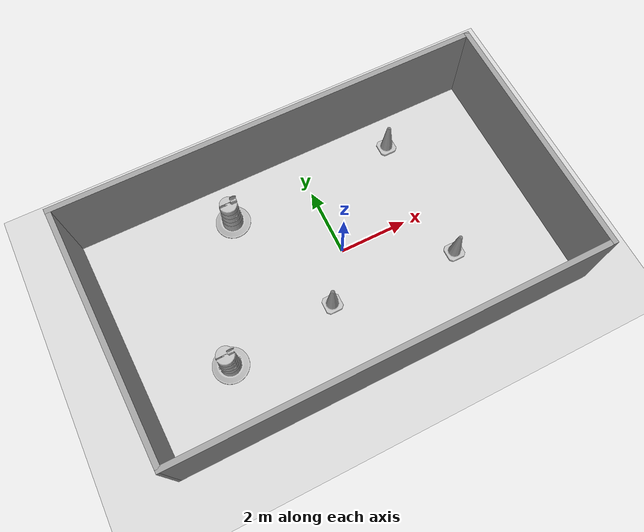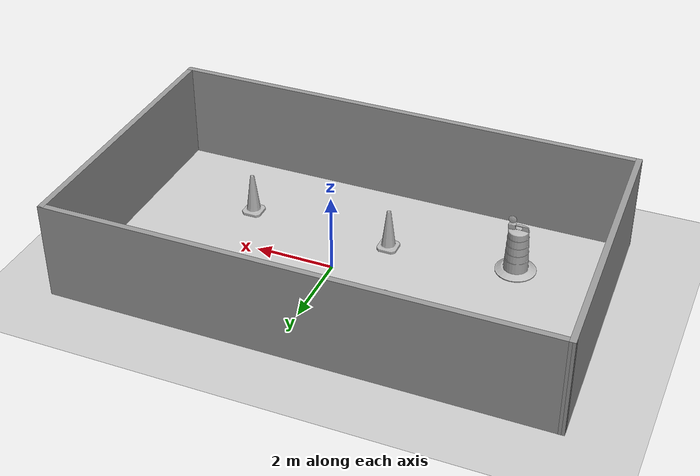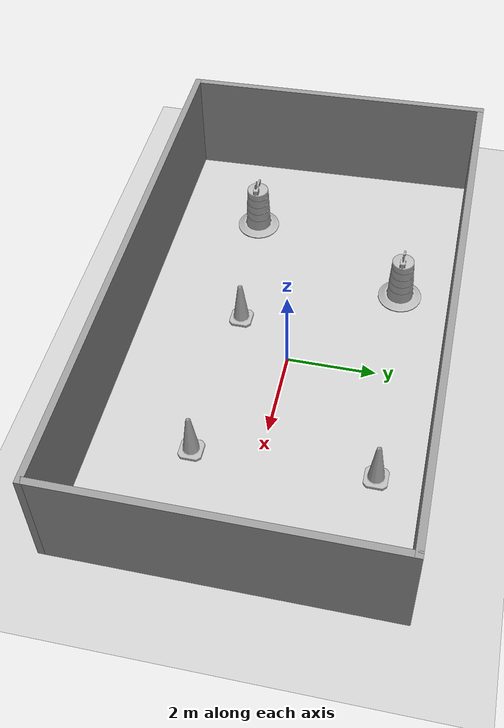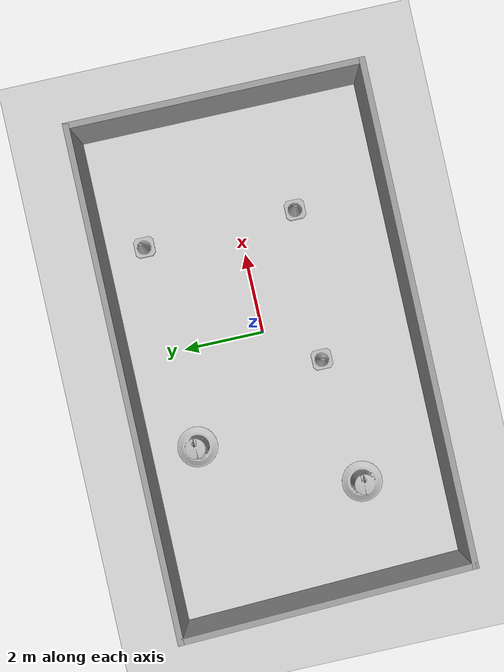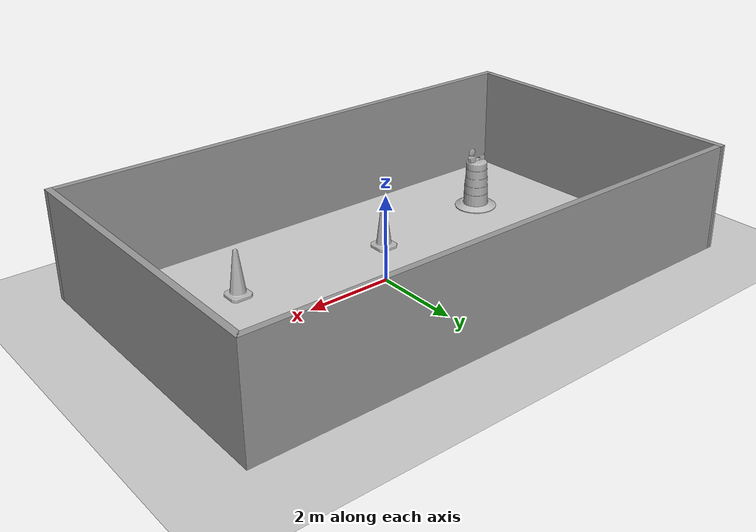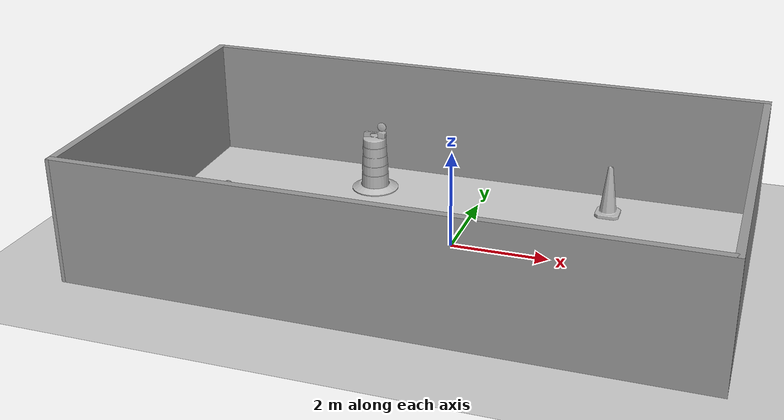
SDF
<sdf version="1.7">
 <world name="default">
  <light name="sun" type="directional">
   <pose>0 0 10 0 -0 0</pose>
   <diffuse>0.8 0.8 0.8 1</diffuse>
   <specular>0.2 0.2 0.2 1</specular>
   <attenuation>
    <range>1000</range>
    <constant>0.9</constant>
    <linear>0.01</linear>
    <quadratic>0.001</quadratic>
   </attenuation>
   <direction>-0.5 0.1 -0.9</direction>
   <spot><inner_angle>0</inner_angle><outer_angle>0</outer_angle><falloff>0</falloff></spot>
  </light>
  <model name="ground_plane">
   <static>1</static>
   <link name="link">
    <collision name="collision">
     <geometry><plane><normal>0 0 1</normal><size>100 100</size></plane></geometry>
     <surface><friction><ode><mu>100</mu><mu2>50</mu2></ode></friction></surface>
    </collision>
    <visual name="visual">
     <cast_shadows>0</cast_shadows>
     <geometry><plane><normal>0 0 1</normal><size>100 100</size></plane></geometry>
     <material>
      <script><uri>file://media/materials/scripts/gazebo.material</uri><name>Gazebo/Grey</name></script>
     </material>
    </visual>
   </link>
  </model>
  <gravity>0 0 -9.8</gravity>
  <magnetic_field>6e-06 2.3e-05 -4.2e-05</magnetic_field>
  <atmosphere type="adiabatic"/>
  <physics type="ode">
   <max_step_size>0.001</max_step_size>
   <real_time_factor>1</real_time_factor>
   <real_time_update_rate>1000</real_time_update_rate>
  </physics>
  <scene><ambient>0.4 0.4 0.4 1</ambient><background>0.7 0.7 0.7 1</background><shadows>1</shadows></scene>
  <audio><device>default</device></audio>
  <spherical_coordinates>
   <surface_model>EARTH_WGS84</surface_model>
   <latitude_deg>0</latitude_deg>
   <longitude_deg>0</longitude_deg>
   <elevation>0</elevation>
   <heading_deg>0</heading_deg>
  </spherical_coordinates>
  <model name="Untitled">
   <pose>-0.516296 -0.11 0 0 -0 0</pose>
   <link name="Wall_1">
    <collision name="Wall_1_Collision">
     <geometry><box><size>12.5 0.15 2.5</size></box></geometry>
     <pose>0 0 1.25 0 -0 0</pose>
    </collision>
    <visual name="Wall_1_Visual">
     <pose>0 0 1.25 0 -0 0</pose>
     <geometry><box><size>12.5 0.15 2.5</size></box></geometry>
     <material>
      <script><uri>file://media/materials/scripts/gazebo.material</uri><name>Gazebo/Grey</name></script>
      <ambient>1 1 1 1</ambient>
     </material>
     <meta><layer>0</layer></meta>
    </visual>
    <pose>0.001296 3.55 0 0 -0 0</pose>
   </link>
   <link name="Wall_2">
    <collision name="Wall_2_Collision">
     <geometry><box><size>7.25 0.15 2.5</size></box></geometry>
     <pose>0 0 1.25 0 -0 0</pose>
    </collision>
    <visual name="Wall_2_Visual">
     <pose>0 0 1.25 0 -0 0</pose>
     <geometry><box><size>7.25 0.15 2.5</size></box></geometry>
     <material>
      <script><uri>file://media/materials/scripts/gazebo.material</uri><name>Gazebo/Grey</name></script>
      <ambient>1 1 1 1</ambient>
     </material>
     <meta><layer>0</layer></meta>
    </visual>
    <pose>6.1763 -0 0 0 -0 -1.5708</pose>
   </link>
   <link name="Wall_3">
    <collision name="Wall_3_Collision">
     <geometry><box><size>12.25 0.15 2.5</size></box></geometry>
     <pose>0 0 1.25 0 -0 0</pose>
    </collision>
    <visual name="Wall_3_Visual">
     <pose>0 0 1.25 0 -0 0</pose>
     <geometry><box><size>12.25 0.15 2.5</size></box></geometry>
     <material>
      <script><uri>file://media/materials/scripts/gazebo.material</uri><name>Gazebo/Grey</name></script>
      <ambient>1 1 1 1</ambient>
     </material>
     <meta><layer>0</layer></meta>
    </visual>
    <pose>0.126296 -3.55 0 0 -0 3.14159</pose>
   </link>
   <link name="Wall_4">
    <collision name="Wall_4_Collision">
     <geometry><box><size>7.2544 0.15 2.5</size></box></geometry>
     <pose>0 0 1.25 0 -0 0</pose>
    </collision>
    <visual name="Wall_4_Visual">
     <pose>0 0 1.25 0 -0 0</pose>
     <geometry><box><size>7.2544 0.15 2.5</size></box></geometry>
     <material>
      <script><uri>file://media/materials/scripts/gazebo.material</uri><name>Gazebo/Grey</name></script>
      <ambient>1 1 1 1</ambient>
     </material>
     <meta><layer>0</layer></meta>
    </visual>
    <pose>-6.0487 -0 0 0 -0 1.60599</pose>
   </link>
   <static>1</static>
  </model>
  <model name="Construction Cone">
   <link name="link">
    <collision name="collision">
     <geometry>
      <mesh><scale>10 10 10</scale><uri>model://construction_cone/meshes/construction_cone.dae</uri></mesh>
     </geometry>
    </collision>
    <visual name="visual">
     <geometry>
      <mesh><scale>10 10 10</scale><uri>model://construction_cone/meshes/construction_cone.dae</uri></mesh>
     </geometry>
    </visual>
    <inertial>
     <inertia><ixx>1</ixx><ixy>0</ixy><ixz>0</ixz><iyy>1</iyy><iyz>0</iyz><izz>1</izz></inertia>
     <mass>1</mass>
    </inertial>
   </link>
   <pose>2.82492 -1.45776 -1e-06 1e-06 -2e-06 -0</pose>
  </model>
  <model name="Construction Cone_0">
   <link name="link">
    <collision name="collision">
     <geometry>
      <mesh><scale>10 10 10</scale><uri>model://construction_cone/meshes/construction_cone.dae</uri></mesh>
     </geometry>
    </collision>
    <visual name="visual">
     <geometry>
      <mesh><scale>10 10 10</scale><uri>model://construction_cone/meshes/construction_cone.dae</uri></mesh>
     </geometry>
    </visual>
    <inertial>
     <inertia><ixx>1</ixx><ixy>0</ixy><ixz>0</ixz><iyy>1</iyy><iyz>0</iyz><izz>1</izz></inertia>
     <mass>1</mass>
    </inertial>
   </link>
   <pose>2.7256 2.42415 -0 0 -1e-06 0</pose>
  </model>
  <model name="Construction Barrel">
   <link name="link">
    <inertial>
     <pose>0 0 0.4 0 -0 0</pose>
     <mass>500</mass>
     <inertia><ixx>51.2096</ixx><iyy>51.2096</iyy><izz>25</izz><ixy>0</ixy><ixz>0</ixz><iyz>0</iyz></inertia>
    </inertial>
    <collision name="collision">
     <geometry><mesh><uri>model://construction_barrel/meshes/construction_barrel.dae</uri></mesh></geometry>
    </collision>
    <visual name="visual">
     <geometry><mesh><uri>model://construction_barrel/meshes/construction_barrel.dae</uri></mesh></geometry>
    </visual>
   </link>
   <pose>-2.43459 2.21027 -2e-06 7e-06 -4e-06 -8e-06</pose>
  </model>
  <model name="Construction Barrel_0">
   <link name="link">
    <inertial>
     <pose>0 0 0.4 0 -0 0</pose>
     <mass>500</mass>
     <inertia><ixx>51.2096</ixx><iyy>51.2096</iyy><izz>25</izz><ixy>0</ixy><ixz>0</ixz><iyz>0</iyz></inertia>
    </inertial>
    <collision name="collision">
     <geometry><mesh><uri>model://construction_barrel/meshes/construction_barrel.dae</uri></mesh></geometry>
    </collision>
    <visual name="visual">
     <geometry><mesh><uri>model://construction_barrel/meshes/construction_barrel.dae</uri></mesh></geometry>
    </visual>
   </link>
   <pose>-4.1706 -1.61655 0 0 0 -6e-06</pose>
  </model>
  <model name="Construction Cone_1">
   <link name="link">
    <collision name="collision">
     <geometry>
      <mesh><scale>10 10 10</scale><uri>model://construction_cone/meshes/construction_cone.dae</uri></mesh>
     </geometry>
    </collision>
    <visual name="visual">
     <geometry>
      <mesh><scale>10 10 10</scale><uri>model://construction_cone/meshes/construction_cone.dae</uri></mesh>
     </geometry>
    </visual>
    <inertial>
     <inertia><ixx>1</ixx><ixy>0</ixy><ixz>0</ixz><iyy>1</iyy><iyz>0</iyz><izz>1</izz></inertia>
     <mass>1</mass>
    </inertial>
   </link>
   <pose>-0.974888 -1.29791 -0 0 -1e-06 0</pose>
  </model>
 </world>
</sdf>
